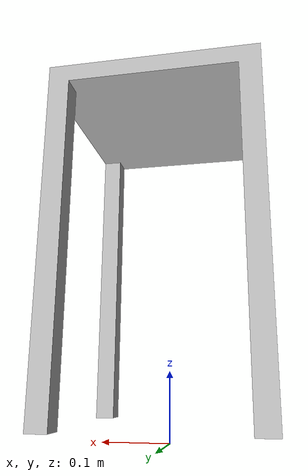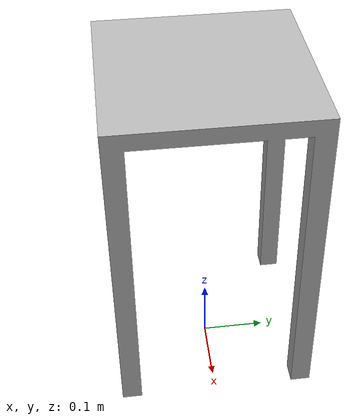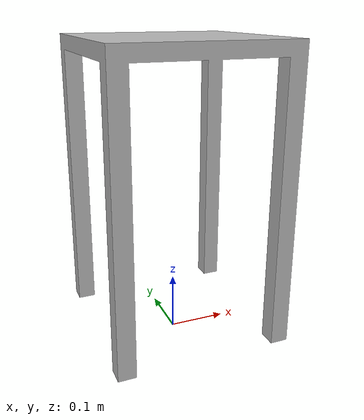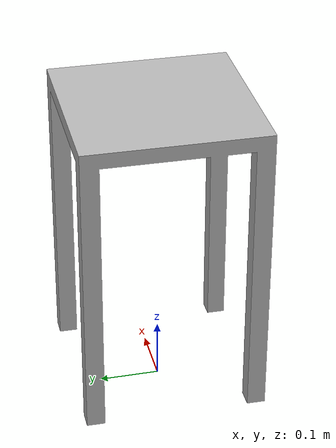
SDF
<?xml version="1.0"?>
<sdf version="1.6">
  <model name="table_2">
    <static>true</static>
    <link name="link">
      <visual name="visual">
        <geometry>
          <mesh>
            <uri>model://table_2/meshes/table_2.stl</uri>
            <scale>0.001 0.001 0.001</scale>
          </mesh>
        </geometry>
      </visual>
      <collision name="collision">
        <geometry>
          <mesh>
            <uri>model://table_2/meshes/table_2.stl</uri>
            <scale>0.001 0.001 0.001</scale>
          </mesh>
        </geometry>
      </collision>
    </link>
  </model>
</sdf>
